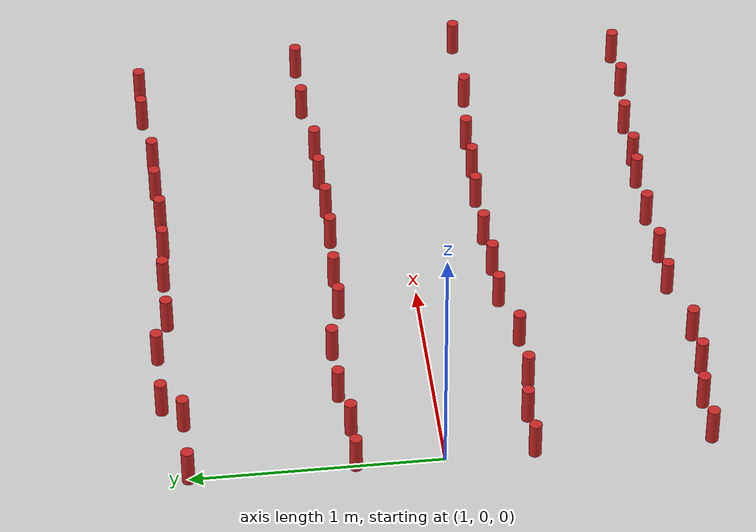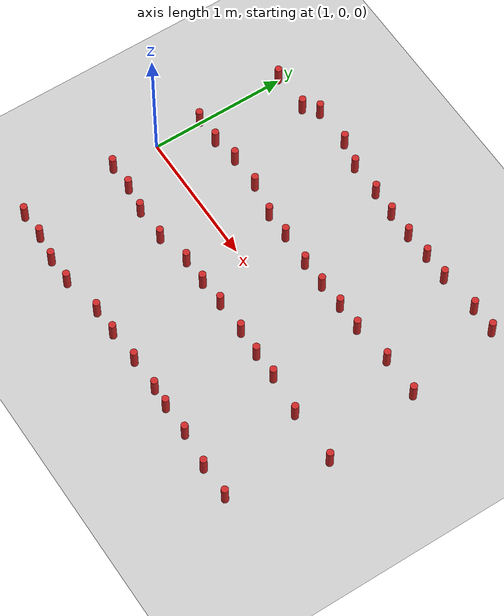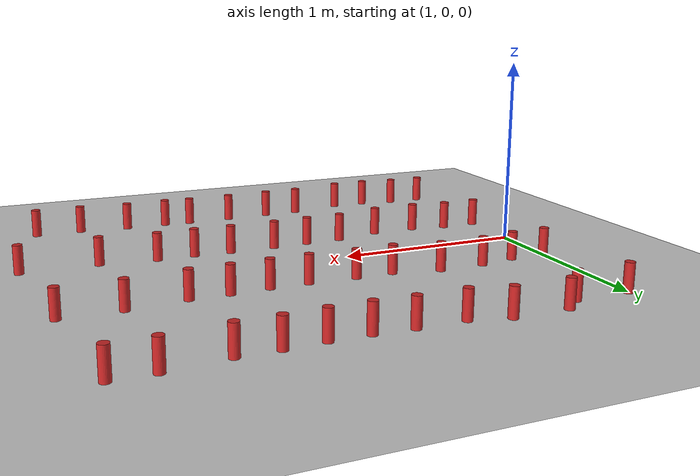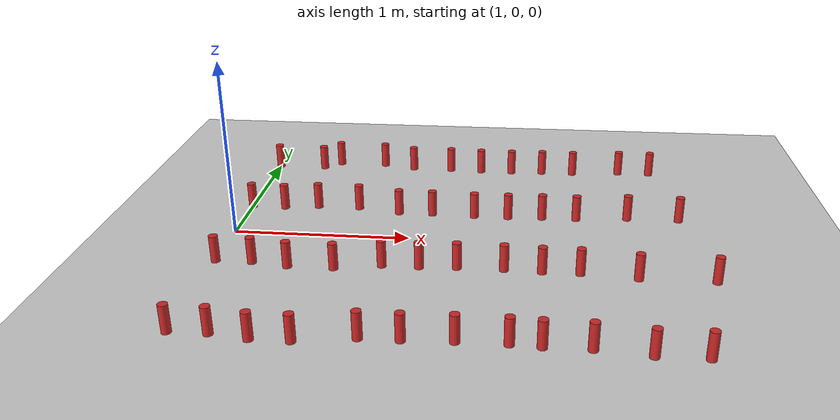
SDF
<sdf version='1.6'>
  <world name='default'>

    <physics type="ode">
      <real_time_update_rate>1000.0</real_time_update_rate>
      <max_step_size>0.005</max_step_size>
      <real_time_factor>1</real_time_factor>
      <ode>
        <solver>
          <type>quick</type>
          <iters>150</iters>
          <precon_iters>0</precon_iters>
          <sor>1.400000</sor>
          <use_dynamic_moi_rescaling>1</use_dynamic_moi_rescaling>
        </solver>
        <constraints>
          <cfm>0.00001</cfm>
          <erp>0.2</erp>
          <contact_max_correcting_vel>2000.000000</contact_max_correcting_vel>
          <contact_surface_layer>0.01000</contact_surface_layer>
        </constraints>
      </ode>
    </physics>

    <include>
		<uri>model://model/ground_plane</uri>
    </include>
    <include>
      	<uri>model://sun</uri>
    </include>

<!-- 1. Reihe -->

	<include>
		<name>p100</name>
    	<pose>1 -.35 0 0 0 0</pose>
    	<uri>model://pumpkin</uri>
  	</include>

	<include>
		<name>p101</name>
    	<pose>1.4 -.38 0 0 0 -.5</pose>
    	<uri>model://pumpkin</uri>
  	</include>

	<include>
 		<name>p102</name>
   	<pose>1.9 -.33 0 0 0 -1</pose>
    	<uri>model://pumpkin</uri>
  	</include>

	<include>
		<name>p103</name>
    	<pose>2.3 -.32 0 0 0 -1.5</pose>
    	<uri>model://pumpkin</uri>
  	</include>

	<include>
		<name>p104</name>
    	<pose>2.75 -.33 0 0 0 1</pose>
    	<uri>model://pumpkin</uri>
  	</include>

	<include>
		<name>p105</name>
    	<pose>3.25 -.36 0 0 0 1.5</pose>
    	<uri>model://pumpkin</uri>
  	</include>

<!-- 2. Reihe -->

	<include>
		<name>p200</name>
    	<pose>1 0.35 0 0 0 0</pose>
    	<uri>model://pumpkin</uri>
  	</include>

	<include>
		<name>p201</name>
    	<pose>1.4 0.38 0 0 0 -.5</pose>
    	<uri>model://pumpkin</uri>
  	</include>

	<include>
		<name>p202</name>
    	<pose>1.9 0.33 0 0 0 -1</pose>
    	<uri>model://pumpkin</uri>
  	</include>

	<include>
 		<name>p203</name>
   		<pose>2.35 0.32 0 0 0 -1.5</pose>
    	<uri>model://pumpkin</uri>
  	</include>

	<include>
		<name>p204</name>
    	<pose>2.75 0.33 0 0 0 1</pose>
    	<uri>model://pumpkin</uri>
  	</include>

	<include>
		<name>p205</name>
    	<pose>3.25 0.36 0 0 0 1.5</pose>
    	<uri>model://pumpkin</uri>
  	</include>

<!-- 3. Reihe -->

	<include>
		<name>p300</name>
    	<pose>1 1.0 0 0 0 0</pose>
    	<uri>model://pumpkin</uri>
  	</include>

	<include>
		<name>p301</name>
    	<pose>1.4 1.08 0 0 0 -.5</pose>
    	<uri>model://pumpkin</uri>
  	</include>

	<include>
		<name>p302</name>
    	<pose>1.9 1.03 0 0 0 -1</pose>
    	<uri>model://pumpkin</uri>
  	</include>

	<include>
		<name>p303</name>
    	<pose>2.35 1.02 0 0 0 -1.5</pose>
    	<uri>model://pumpkin</uri>
  	</include>

	<include>
		<name>p305</name>
    	<pose>2.75 1.03 0 0 0 1</pose>
    	<uri>model://pumpkin</uri>
  	</include>

	<include>
		<name>p306</name>
    	<pose>3.25 1.06 0 0 0 1.5</pose>
    	<uri>model://pumpkin</uri>
  	</include>

<!-- 4. Reihe -->

	<include>
		<name>p400</name>
    	<pose>1 -1.05 0 0 0 0</pose>
    	<uri>model://pumpkin</uri>
  	</include>

	<include>
		<name>p401</name>
    	<pose>1.4 -1.08 0 0 0 -.5</pose>
    	<uri>model://pumpkin</uri>
  	</include>

	<include>
		<name>p402</name>
    	<pose>1.9 -1.03 0 0 0 -1</pose>
    	<uri>model://pumpkin</uri>
  	</include>

	<include>
		<name>p403</name>
    	<pose>2.35 -1.02 0 0 0 -1.5</pose>
    	<uri>model://pumpkin</uri>
  	</include>

	<include>
		<name>p404</name>
    	<pose>2.75 -1.03 0 0 0 1</pose>
    	<uri>model://pumpkin</uri>
  	</include>

	<include>
		<name>p405</name>
    	<pose>3.25 -1.06 0 0 0 1.5</pose>
    	<uri>model://pumpkin</uri>
  	</include>

<!-- 1.5. Reihe -->

	<include>
		<name>p150</name>
    	<pose>1.2 -.35 0 0 0 0</pose>
    	<uri>model://pumpkin</uri>
  	</include>

	<include>
		<name>p151</name>
    	<pose>1.65 -.38 0 0 0 -.5</pose>
    	<uri>model://pumpkin</uri>
  	</include>

	<include>
		<name>p152</name>
    	<pose>2.1 -.33 0 0 0 -1</pose>
    	<uri>model://pumpkin</uri>
  	</include>

	<include>
		<name>p153</name>
    	<pose>2.55 -.32 0 0 0 -1.5</pose>
    	<uri>model://pumpkin</uri>
  	</include>

	<include>
		<name>p154</name>
    	<pose>2.95 -.33 0 0 0 1</pose>
    	<uri>model://pumpkin</uri>
  	</include>

	<include>
		<name>p155</name>
    	<pose>3.65 -.36 0 0 0 1.5</pose>
    	<uri>model://pumpkin</uri>
  	</include>

<!-- 2.5. Reihe -->

	<include>
		<name>p250</name>
    	<pose>1.2 .35 0 0 0 0</pose>
    	<uri>model://pumpkin</uri>
  	</include>

	<include>
		<name>p251</name>
    	<pose>1.65 .38 0 0 0 -.5</pose>
    	<uri>model://pumpkin</uri>
  	</include>

	<include>
		<name>p252</name>
    	<pose>2.1 .33 0 0 0 -1</pose>
    	<uri>model://pumpkin</uri>
  	</include>

	<include>
		<name>p253</name>
    	<pose>2.55 .32 0 0 0 -1.5</pose>
    	<uri>model://pumpkin</uri>
  	</include>

	<include>
		<name>p254</name>
    	<pose>2.95 .33 0 0 0 1</pose>
    	<uri>model://pumpkin</uri>
  	</include>

	<include>
		<name>p255</name>
    	<pose>3.55 .36 0 0 0 1.5</pose>
    	<uri>model://pumpkin</uri>
  	</include>

<!-- 3.5 Reihe -->

	<include>
		<name>p350</name>
    	<pose>1.3 1.0 0 0 0 0</pose>
    	<uri>model://pumpkin</uri>
  	</include>

	<include>
		<name>p351</name>
    	<pose>1.7 1.08 0 0 0 -.5</pose>
    	<uri>model://pumpkin</uri>
  	</include>

	<include>
		<name>p352</name>
    	<pose>2.15 1.03 0 0 0 -1</pose>
    	<uri>model://pumpkin</uri>
  	</include>

	<include>
		<name>p353</name>
    	<pose>2.55 1.02 0 0 0 -1.5</pose>
    	<uri>model://pumpkin</uri>
  	</include>

	<include>
		<name>p354</name>
    	<pose>2.95 1.03 0 0 0 1</pose>
    	<uri>model://pumpkin</uri>
  	</include>

	<include>
		<name>p355</name>
    	<pose>3.45 1.06 0 0 0 1.5</pose>
    	<uri>model://pumpkin</uri>
  	</include>

<!-- 4.5. Reihe -->

	<include>
		<name>p450</name>
    	<pose>1.2 -1.05 0 0 0 0</pose>
    	<uri>model://pumpkin</uri>
  	</include>

	<include>
		<name>p451</name>
    	<pose>1.6 -1.08 0 0 0 -.5</pose>
    	<uri>model://pumpkin</uri>
  	</include>

	<include>
		<name>p452</name>
    	<pose>2.1 -1.03 0 0 0 -1</pose>
    	<uri>model://pumpkin</uri>
  	</include>

	<include>
		<name>p453</name>
    	<pose>2.6 -1.02 0 0 0 -1.5</pose>
    	<uri>model://pumpkin</uri>
  	</include>

	<include>
		<name>p454</name>
    	<pose>2.98 -1.03 0 0 0 1</pose>
    	<uri>model://pumpkin</uri>
  	</include>

	<include>
		<name>p455</name>
    	<pose>3.5 -1.06 0 0 0 1.5</pose>
    	<uri>model://pumpkin</uri>
  	</include>

  </world>
</sdf>

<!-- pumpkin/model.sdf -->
<sdf version="1.5">
  <model name="pumpkin">
    <link name="link">
      <inertial>
        <pose>0 0 0 0 0 0</pose>
        <mass>0.390</mass>
        <inertia>
          <ixx>0.00055575</ixx>
          <ixy>0</ixy>
          <ixz>0</ixz>
          <iyy>0.00055575</iyy>
          <iyz>0</iyz>
          <izz>0.0001755</izz>
        </inertia>
      </inertial>
      <collision name="collision">
          <geometry>
            <cylinder>
             <radius>0.025</radius>
              <length>0.3</length>
            </cylinder>
          </geometry>
        <surface>
          <friction>
            <ode>
              <mu>1.0</mu>
              <mu2>1.0</mu2>
            </ode>
          </friction>
          <contact>
            <ode>
              <kp>10000000.0</kp>
              <kd>1.0</kd>
              <min_depth>0.001</min_depth>
              <max_vel>0.1</max_vel>
            </ode>
          </contact>
        </surface>
      </collision>
      <visual name="visual">
          <geometry>
            <cylinder>
             <radius>0.025</radius>
              <length>0.3</length>
            </cylinder>
          </geometry>
        <material>
          <script>
           <uri>file://media/materials/scripts/gazebo.material</uri>
            <name>Gazebo/Red</name>
          </script>
        </material>
      </visual>
    </link>
  </model>
</sdf>
